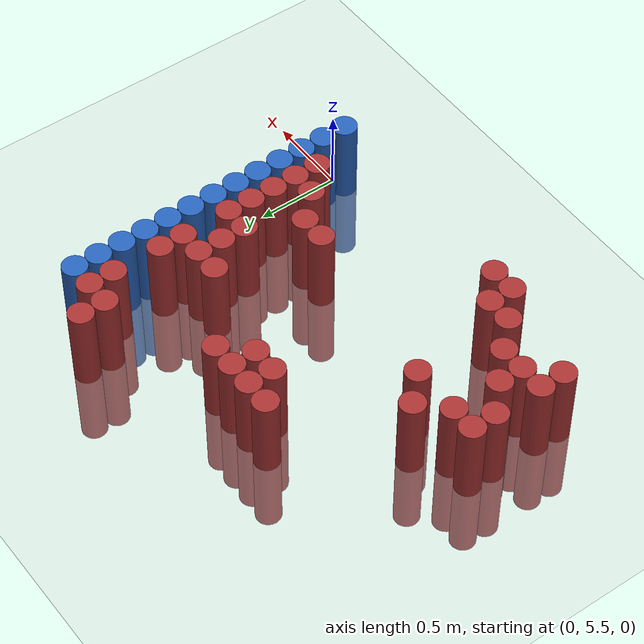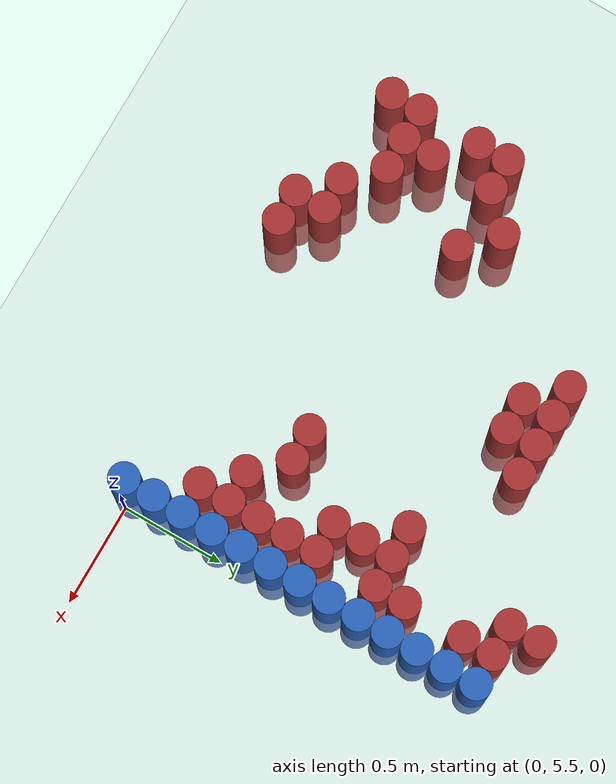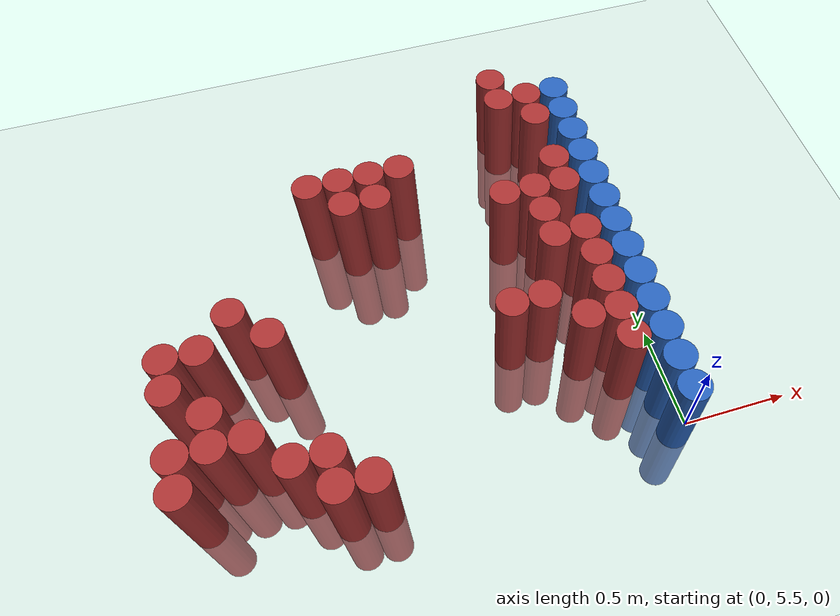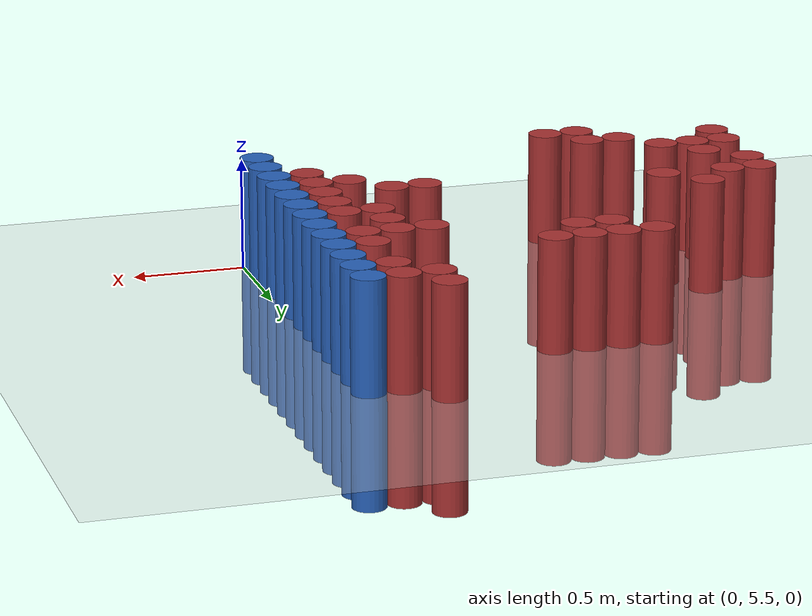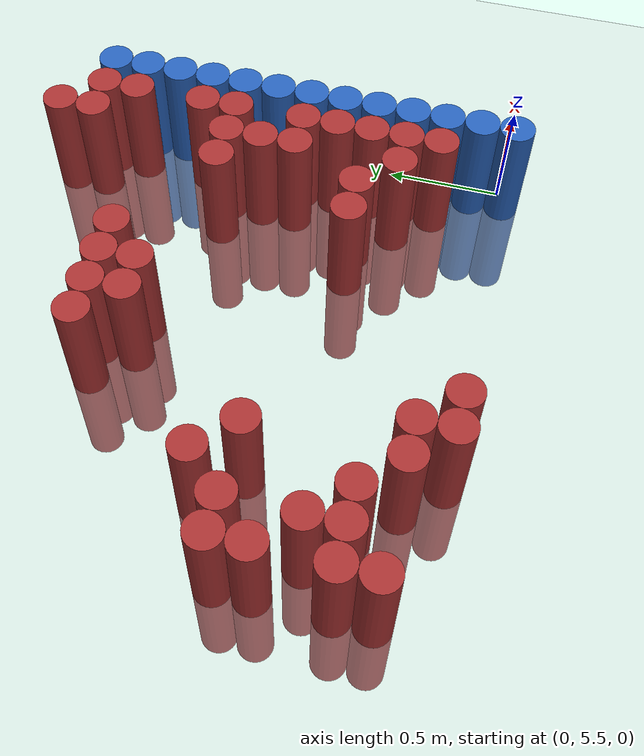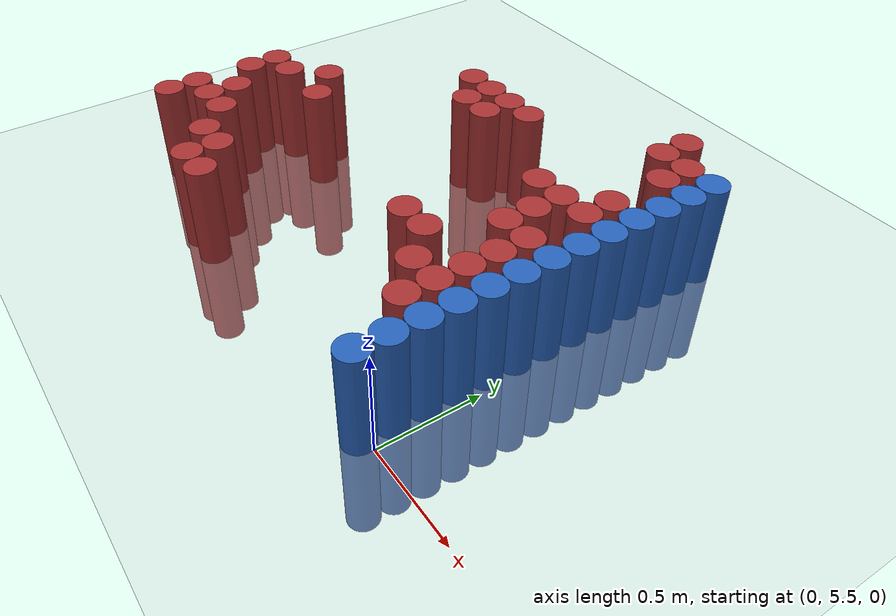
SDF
<sdf version="1.6">
 <world name="default">
  <model name="ground_plane">
   <static>1</static>
   <link name="link">
    <collision name="collision">
     <geometry><plane><normal>0 0 1</normal><size>100 100</size></plane></geometry>
     <surface><friction><ode><mu>100</mu><mu2>50</mu2></ode></friction></surface>
    </collision>
    <visual name="visual">
     <cast_shadows>0</cast_shadows>
     <geometry><plane><normal>0 0 1</normal><size>100 100</size></plane></geometry>
     <material>
      <script><uri>file://media/materials/scripts/gazebo.material</uri><name>Gazebo/Grey</name></script>
     </material>
    </visual>
   </link>
  </model>
  <model name="unit_cylinder_151">
   <static>1</static>
   <pose>-2.175000 5.625000 0.000000 0.000000 0.000000 0.000000</pose>
   <link name="link">
    <inertial>
     <mass>1</mass>
     <inertia><ixx>0.145833</ixx><ixy>0</ixy><ixz>0</ixz><iyy>0.145833</iyy><iyz>0</iyz><izz>0.125</izz></inertia>
    </inertial>
    <collision name="collision">
     <geometry><cylinder><radius>0.075000</radius><length>1</length></cylinder></geometry>
    </collision>
    <visual name="visual">
     <geometry><cylinder><radius>0.075000</radius><length>1</length></cylinder></geometry>
     <material>
      <ambient>0.648000 0.192000 0.192000 1</ambient>
      <diffuse>0.648000 0.192000 0.192000 1</diffuse>
     </material>
     <material>
      <script><name>Gazebo/Grey</name><uri>file://media/materials/scripts/gazebo.material</uri></script>
     </material>
    </visual>
   </link>
  </model>
  <model name="unit_cylinder_152">
   <static>1</static>
   <pose>-2.175000 5.775000 0.000000 0.000000 0.000000 0.000000</pose>
   <link name="link">
    <inertial>
     <mass>1</mass>
     <inertia><ixx>0.145833</ixx><ixy>0</ixy><ixz>0</ixz><iyy>0.145833</iyy><iyz>0</iyz><izz>0.125</izz></inertia>
    </inertial>
    <collision name="collision">
     <geometry><cylinder><radius>0.075000</radius><length>1</length></cylinder></geometry>
    </collision>
    <visual name="visual">
     <geometry><cylinder><radius>0.075000</radius><length>1</length></cylinder></geometry>
     <material>
      <ambient>0.648000 0.192000 0.192000 1</ambient>
      <diffuse>0.648000 0.192000 0.192000 1</diffuse>
     </material>
     <material>
      <script><name>Gazebo/Grey</name><uri>file://media/materials/scripts/gazebo.material</uri></script>
     </material>
    </visual>
   </link>
  </model>
  <model name="unit_cylinder_153">
   <static>1</static>
   <pose>-2.175000 6.075000 0.000000 0.000000 0.000000 0.000000</pose>
   <link name="link">
    <inertial>
     <mass>1</mass>
     <inertia><ixx>0.145833</ixx><ixy>0</ixy><ixz>0</ixz><iyy>0.145833</iyy><iyz>0</iyz><izz>0.125</izz></inertia>
    </inertial>
    <collision name="collision">
     <geometry><cylinder><radius>0.075000</radius><length>1</length></cylinder></geometry>
    </collision>
    <visual name="visual">
     <geometry><cylinder><radius>0.075000</radius><length>1</length></cylinder></geometry>
     <material>
      <ambient>0.648000 0.192000 0.192000 1</ambient>
      <diffuse>0.648000 0.192000 0.192000 1</diffuse>
     </material>
     <material>
      <script><name>Gazebo/Grey</name><uri>file://media/materials/scripts/gazebo.material</uri></script>
     </material>
    </visual>
   </link>
  </model>
  <model name="unit_cylinder_154">
   <static>1</static>
   <pose>-2.175000 6.225000 0.000000 0.000000 0.000000 0.000000</pose>
   <link name="link">
    <inertial>
     <mass>1</mass>
     <inertia><ixx>0.145833</ixx><ixy>0</ixy><ixz>0</ixz><iyy>0.145833</iyy><iyz>0</iyz><izz>0.125</izz></inertia>
    </inertial>
    <collision name="collision">
     <geometry><cylinder><radius>0.075000</radius><length>1</length></cylinder></geometry>
    </collision>
    <visual name="visual">
     <geometry><cylinder><radius>0.075000</radius><length>1</length></cylinder></geometry>
     <material>
      <ambient>0.648000 0.192000 0.192000 1</ambient>
      <diffuse>0.648000 0.192000 0.192000 1</diffuse>
     </material>
     <material>
      <script><name>Gazebo/Grey</name><uri>file://media/materials/scripts/gazebo.material</uri></script>
     </material>
    </visual>
   </link>
  </model>
  <model name="unit_cylinder_158">
   <static>1</static>
   <pose>-2.025000 5.775000 0.000000 0.000000 0.000000 0.000000</pose>
   <link name="link">
    <inertial>
     <mass>1</mass>
     <inertia><ixx>0.145833</ixx><ixy>0</ixy><ixz>0</ixz><iyy>0.145833</iyy><iyz>0</iyz><izz>0.125</izz></inertia>
    </inertial>
    <collision name="collision">
     <geometry><cylinder><radius>0.075000</radius><length>1</length></cylinder></geometry>
    </collision>
    <visual name="visual">
     <geometry><cylinder><radius>0.075000</radius><length>1</length></cylinder></geometry>
     <material>
      <ambient>0.648000 0.192000 0.192000 1</ambient>
      <diffuse>0.648000 0.192000 0.192000 1</diffuse>
     </material>
     <material>
      <script><name>Gazebo/Grey</name><uri>file://media/materials/scripts/gazebo.material</uri></script>
     </material>
    </visual>
   </link>
  </model>
  <model name="unit_cylinder_159">
   <static>1</static>
   <pose>-2.025000 5.925000 0.000000 0.000000 0.000000 0.000000</pose>
   <link name="link">
    <inertial>
     <mass>1</mass>
     <inertia><ixx>0.145833</ixx><ixy>0</ixy><ixz>0</ixz><iyy>0.145833</iyy><iyz>0</iyz><izz>0.125</izz></inertia>
    </inertial>
    <collision name="collision">
     <geometry><cylinder><radius>0.075000</radius><length>1</length></cylinder></geometry>
    </collision>
    <visual name="visual">
     <geometry><cylinder><radius>0.075000</radius><length>1</length></cylinder></geometry>
     <material>
      <ambient>0.648000 0.192000 0.192000 1</ambient>
      <diffuse>0.648000 0.192000 0.192000 1</diffuse>
     </material>
     <material>
      <script><name>Gazebo/Grey</name><uri>file://media/materials/scripts/gazebo.material</uri></script>
     </material>
    </visual>
   </link>
  </model>
  <model name="unit_cylinder_160">
   <static>1</static>
   <pose>-2.025000 6.225000 0.000000 0.000000 0.000000 0.000000</pose>
   <link name="link">
    <inertial>
     <mass>1</mass>
     <inertia><ixx>0.145833</ixx><ixy>0</ixy><ixz>0</ixz><iyy>0.145833</iyy><iyz>0</iyz><izz>0.125</izz></inertia>
    </inertial>
    <collision name="collision">
     <geometry><cylinder><radius>0.075000</radius><length>1</length></cylinder></geometry>
    </collision>
    <visual name="visual">
     <geometry><cylinder><radius>0.075000</radius><length>1</length></cylinder></geometry>
     <material>
      <ambient>0.648000 0.192000 0.192000 1</ambient>
      <diffuse>0.648000 0.192000 0.192000 1</diffuse>
     </material>
     <material>
      <script><name>Gazebo/Grey</name><uri>file://media/materials/scripts/gazebo.material</uri></script>
     </material>
    </visual>
   </link>
  </model>
  <model name="unit_cylinder_164">
   <static>1</static>
   <pose>-1.875000 5.775000 0.000000 0.000000 0.000000 0.000000</pose>
   <link name="link">
    <inertial>
     <mass>1</mass>
     <inertia><ixx>0.145833</ixx><ixy>0</ixy><ixz>0</ixz><iyy>0.145833</iyy><iyz>0</iyz><izz>0.125</izz></inertia>
    </inertial>
    <collision name="collision">
     <geometry><cylinder><radius>0.075000</radius><length>1</length></cylinder></geometry>
    </collision>
    <visual name="visual">
     <geometry><cylinder><radius>0.075000</radius><length>1</length></cylinder></geometry>
     <material>
      <ambient>0.648000 0.192000 0.192000 1</ambient>
      <diffuse>0.648000 0.192000 0.192000 1</diffuse>
     </material>
     <material>
      <script><name>Gazebo/Grey</name><uri>file://media/materials/scripts/gazebo.material</uri></script>
     </material>
    </visual>
   </link>
  </model>
  <model name="unit_cylinder_165">
   <static>1</static>
   <pose>-1.875000 6.375000 0.000000 0.000000 0.000000 0.000000</pose>
   <link name="link">
    <inertial>
     <mass>1</mass>
     <inertia><ixx>0.145833</ixx><ixy>0</ixy><ixz>0</ixz><iyy>0.145833</iyy><iyz>0</iyz><izz>0.125</izz></inertia>
    </inertial>
    <collision name="collision">
     <geometry><cylinder><radius>0.075000</radius><length>1</length></cylinder></geometry>
    </collision>
    <visual name="visual">
     <geometry><cylinder><radius>0.075000</radius><length>1</length></cylinder></geometry>
     <material>
      <ambient>0.648000 0.192000 0.192000 1</ambient>
      <diffuse>0.648000 0.192000 0.192000 1</diffuse>
     </material>
     <material>
      <script><name>Gazebo/Grey</name><uri>file://media/materials/scripts/gazebo.material</uri></script>
     </material>
    </visual>
   </link>
  </model>
  <model name="unit_cylinder_172">
   <static>1</static>
   <pose>-1.725000 5.625000 0.000000 0.000000 0.000000 0.000000</pose>
   <link name="link">
    <inertial>
     <mass>1</mass>
     <inertia><ixx>0.145833</ixx><ixy>0</ixy><ixz>0</ixz><iyy>0.145833</iyy><iyz>0</iyz><izz>0.125</izz></inertia>
    </inertial>
    <collision name="collision">
     <geometry><cylinder><radius>0.075000</radius><length>1</length></cylinder></geometry>
    </collision>
    <visual name="visual">
     <geometry><cylinder><radius>0.075000</radius><length>1</length></cylinder></geometry>
     <material>
      <ambient>0.648000 0.192000 0.192000 1</ambient>
      <diffuse>0.648000 0.192000 0.192000 1</diffuse>
     </material>
     <material>
      <script><name>Gazebo/Grey</name><uri>file://media/materials/scripts/gazebo.material</uri></script>
     </material>
    </visual>
   </link>
  </model>
  <model name="unit_cylinder_173">
   <static>1</static>
   <pose>-1.725000 6.225000 0.000000 0.000000 0.000000 0.000000</pose>
   <link name="link">
    <inertial>
     <mass>1</mass>
     <inertia><ixx>0.145833</ixx><ixy>0</ixy><ixz>0</ixz><iyy>0.145833</iyy><iyz>0</iyz><izz>0.125</izz></inertia>
    </inertial>
    <collision name="collision">
     <geometry><cylinder><radius>0.075000</radius><length>1</length></cylinder></geometry>
    </collision>
    <visual name="visual">
     <geometry><cylinder><radius>0.075000</radius><length>1</length></cylinder></geometry>
     <material>
      <ambient>0.648000 0.192000 0.192000 1</ambient>
      <diffuse>0.648000 0.192000 0.192000 1</diffuse>
     </material>
     <material>
      <script><name>Gazebo/Grey</name><uri>file://media/materials/scripts/gazebo.material</uri></script>
     </material>
    </visual>
   </link>
  </model>
  <model name="unit_cylinder_175">
   <static>1</static>
   <pose>-1.575000 5.475000 0.000000 0.000000 0.000000 0.000000</pose>
   <link name="link">
    <inertial>
     <mass>1</mass>
     <inertia><ixx>0.145833</ixx><ixy>0</ixy><ixz>0</ixz><iyy>0.145833</iyy><iyz>0</iyz><izz>0.125</izz></inertia>
    </inertial>
    <collision name="collision">
     <geometry><cylinder><radius>0.075000</radius><length>1</length></cylinder></geometry>
    </collision>
    <visual name="visual">
     <geometry><cylinder><radius>0.075000</radius><length>1</length></cylinder></geometry>
     <material>
      <ambient>0.648000 0.192000 0.192000 1</ambient>
      <diffuse>0.648000 0.192000 0.192000 1</diffuse>
     </material>
     <material>
      <script><name>Gazebo/Grey</name><uri>file://media/materials/scripts/gazebo.material</uri></script>
     </material>
    </visual>
   </link>
  </model>
  <model name="unit_cylinder_176">
   <static>1</static>
   <pose>-1.575000 5.625000 0.000000 0.000000 0.000000 0.000000</pose>
   <link name="link">
    <inertial>
     <mass>1</mass>
     <inertia><ixx>0.145833</ixx><ixy>0</ixy><ixz>0</ixz><iyy>0.145833</iyy><iyz>0</iyz><izz>0.125</izz></inertia>
    </inertial>
    <collision name="collision">
     <geometry><cylinder><radius>0.075000</radius><length>1</length></cylinder></geometry>
    </collision>
    <visual name="visual">
     <geometry><cylinder><radius>0.075000</radius><length>1</length></cylinder></geometry>
     <material>
      <ambient>0.648000 0.192000 0.192000 1</ambient>
      <diffuse>0.648000 0.192000 0.192000 1</diffuse>
     </material>
     <material>
      <script><name>Gazebo/Grey</name><uri>file://media/materials/scripts/gazebo.material</uri></script>
     </material>
    </visual>
   </link>
  </model>
  <model name="unit_cylinder_178">
   <static>1</static>
   <pose>-1.425000 5.475000 0.000000 0.000000 0.000000 0.000000</pose>
   <link name="link">
    <inertial>
     <mass>1</mass>
     <inertia><ixx>0.145833</ixx><ixy>0</ixy><ixz>0</ixz><iyy>0.145833</iyy><iyz>0</iyz><izz>0.125</izz></inertia>
    </inertial>
    <collision name="collision">
     <geometry><cylinder><radius>0.075000</radius><length>1</length></cylinder></geometry>
    </collision>
    <visual name="visual">
     <geometry><cylinder><radius>0.075000</radius><length>1</length></cylinder></geometry>
     <material>
      <ambient>0.648000 0.192000 0.192000 1</ambient>
      <diffuse>0.648000 0.192000 0.192000 1</diffuse>
     </material>
     <material>
      <script><name>Gazebo/Grey</name><uri>file://media/materials/scripts/gazebo.material</uri></script>
     </material>
    </visual>
   </link>
  </model>
  <model name="unit_cylinder_179">
   <static>1</static>
   <pose>-1.425000 6.975000 0.000000 0.000000 0.000000 0.000000</pose>
   <link name="link">
    <inertial>
     <mass>1</mass>
     <inertia><ixx>0.145833</ixx><ixy>0</ixy><ixz>0</ixz><iyy>0.145833</iyy><iyz>0</iyz><izz>0.125</izz></inertia>
    </inertial>
    <collision name="collision">
     <geometry><cylinder><radius>0.075000</radius><length>1</length></cylinder></geometry>
    </collision>
    <visual name="visual">
     <geometry><cylinder><radius>0.075000</radius><length>1</length></cylinder></geometry>
     <material>
      <ambient>0.648000 0.192000 0.192000 1</ambient>
      <diffuse>0.648000 0.192000 0.192000 1</diffuse>
     </material>
     <material>
      <script><name>Gazebo/Grey</name><uri>file://media/materials/scripts/gazebo.material</uri></script>
     </material>
    </visual>
   </link>
  </model>
  <model name="unit_cylinder_182">
   <static>1</static>
   <pose>-1.275000 6.825000 0.000000 0.000000 0.000000 0.000000</pose>
   <link name="link">
    <inertial>
     <mass>1</mass>
     <inertia><ixx>0.145833</ixx><ixy>0</ixy><ixz>0</ixz><iyy>0.145833</iyy><iyz>0</iyz><izz>0.125</izz></inertia>
    </inertial>
    <collision name="collision">
     <geometry><cylinder><radius>0.075000</radius><length>1</length></cylinder></geometry>
    </collision>
    <visual name="visual">
     <geometry><cylinder><radius>0.075000</radius><length>1</length></cylinder></geometry>
     <material>
      <ambient>0.648000 0.192000 0.192000 1</ambient>
      <diffuse>0.648000 0.192000 0.192000 1</diffuse>
     </material>
     <material>
      <script><name>Gazebo/Grey</name><uri>file://media/materials/scripts/gazebo.material</uri></script>
     </material>
    </visual>
   </link>
  </model>
  <model name="unit_cylinder_183">
   <static>1</static>
   <pose>-1.275000 6.975000 0.000000 0.000000 0.000000 0.000000</pose>
   <link name="link">
    <inertial>
     <mass>1</mass>
     <inertia><ixx>0.145833</ixx><ixy>0</ixy><ixz>0</ixz><iyy>0.145833</iyy><iyz>0</iyz><izz>0.125</izz></inertia>
    </inertial>
    <collision name="collision">
     <geometry><cylinder><radius>0.075000</radius><length>1</length></cylinder></geometry>
    </collision>
    <visual name="visual">
     <geometry><cylinder><radius>0.075000</radius><length>1</length></cylinder></geometry>
     <material>
      <ambient>0.648000 0.192000 0.192000 1</ambient>
      <diffuse>0.648000 0.192000 0.192000 1</diffuse>
     </material>
     <material>
      <script><name>Gazebo/Grey</name><uri>file://media/materials/scripts/gazebo.material</uri></script>
     </material>
    </visual>
   </link>
  </model>
  <model name="unit_cylinder_184">
   <static>1</static>
   <pose>-1.125000 6.825000 0.000000 0.000000 0.000000 0.000000</pose>
   <link name="link">
    <inertial>
     <mass>1</mass>
     <inertia><ixx>0.145833</ixx><ixy>0</ixy><ixz>0</ixz><iyy>0.145833</iyy><iyz>0</iyz><izz>0.125</izz></inertia>
    </inertial>
    <collision name="collision">
     <geometry><cylinder><radius>0.075000</radius><length>1</length></cylinder></geometry>
    </collision>
    <visual name="visual">
     <geometry><cylinder><radius>0.075000</radius><length>1</length></cylinder></geometry>
     <material>
      <ambient>0.648000 0.192000 0.192000 1</ambient>
      <diffuse>0.648000 0.192000 0.192000 1</diffuse>
     </material>
     <material>
      <script><name>Gazebo/Grey</name><uri>file://media/materials/scripts/gazebo.material</uri></script>
     </material>
    </visual>
   </link>
  </model>
  <model name="unit_cylinder_185">
   <static>1</static>
   <pose>-1.125000 6.975000 0.000000 0.000000 0.000000 0.000000</pose>
   <link name="link">
    <inertial>
     <mass>1</mass>
     <inertia><ixx>0.145833</ixx><ixy>0</ixy><ixz>0</ixz><iyy>0.145833</iyy><iyz>0</iyz><izz>0.125</izz></inertia>
    </inertial>
    <collision name="collision">
     <geometry><cylinder><radius>0.075000</radius><length>1</length></cylinder></geometry>
    </collision>
    <visual name="visual">
     <geometry><cylinder><radius>0.075000</radius><length>1</length></cylinder></geometry>
     <material>
      <ambient>0.648000 0.192000 0.192000 1</ambient>
      <diffuse>0.648000 0.192000 0.192000 1</diffuse>
     </material>
     <material>
      <script><name>Gazebo/Grey</name><uri>file://media/materials/scripts/gazebo.material</uri></script>
     </material>
    </visual>
   </link>
  </model>
  <model name="unit_cylinder_188">
   <static>1</static>
   <pose>-0.975000 6.975000 0.000000 0.000000 0.000000 0.000000</pose>
   <link name="link">
    <inertial>
     <mass>1</mass>
     <inertia><ixx>0.145833</ixx><ixy>0</ixy><ixz>0</ixz><iyy>0.145833</iyy><iyz>0</iyz><izz>0.125</izz></inertia>
    </inertial>
    <collision name="collision">
     <geometry><cylinder><radius>0.075000</radius><length>1</length></cylinder></geometry>
    </collision>
    <visual name="visual">
     <geometry><cylinder><radius>0.075000</radius><length>1</length></cylinder></geometry>
     <material>
      <ambient>0.648000 0.192000 0.192000 1</ambient>
      <diffuse>0.648000 0.192000 0.192000 1</diffuse>
     </material>
     <material>
      <script><name>Gazebo/Grey</name><uri>file://media/materials/scripts/gazebo.material</uri></script>
     </material>
    </visual>
   </link>
  </model>
  <model name="unit_cylinder_194">
   <static>1</static>
   <pose>-0.675000 6.075000 0.000000 0.000000 0.000000 0.000000</pose>
   <link name="link">
    <inertial>
     <mass>1</mass>
     <inertia><ixx>0.145833</ixx><ixy>0</ixy><ixz>0</ixz><iyy>0.145833</iyy><iyz>0</iyz><izz>0.125</izz></inertia>
    </inertial>
    <collision name="collision">
     <geometry><cylinder><radius>0.075000</radius><length>1</length></cylinder></geometry>
    </collision>
    <visual name="visual">
     <geometry><cylinder><radius>0.075000</radius><length>1</length></cylinder></geometry>
     <material>
      <ambient>0.648000 0.192000 0.192000 1</ambient>
      <diffuse>0.648000 0.192000 0.192000 1</diffuse>
     </material>
     <material>
      <script><name>Gazebo/Grey</name><uri>file://media/materials/scripts/gazebo.material</uri></script>
     </material>
    </visual>
   </link>
  </model>
  <model name="unit_cylinder_197">
   <static>1</static>
   <pose>-0.525000 6.075000 0.000000 0.000000 0.000000 0.000000</pose>
   <link name="link">
    <inertial>
     <mass>1</mass>
     <inertia><ixx>0.145833</ixx><ixy>0</ixy><ixz>0</ixz><iyy>0.145833</iyy><iyz>0</iyz><izz>0.125</izz></inertia>
    </inertial>
    <collision name="collision">
     <geometry><cylinder><radius>0.075000</radius><length>1</length></cylinder></geometry>
    </collision>
    <visual name="visual">
     <geometry><cylinder><radius>0.075000</radius><length>1</length></cylinder></geometry>
     <material>
      <ambient>0.648000 0.192000 0.192000 1</ambient>
      <diffuse>0.648000 0.192000 0.192000 1</diffuse>
     </material>
     <material>
      <script><name>Gazebo/Grey</name><uri>file://media/materials/scripts/gazebo.material</uri></script>
     </material>
    </visual>
   </link>
  </model>
  <model name="unit_cylinder_198">
   <static>1</static>
   <pose>-0.525000 6.675000 0.000000 0.000000 0.000000 0.000000</pose>
   <link name="link">
    <inertial>
     <mass>1</mass>
     <inertia><ixx>0.145833</ixx><ixy>0</ixy><ixz>0</ixz><iyy>0.145833</iyy><iyz>0</iyz><izz>0.125</izz></inertia>
    </inertial>
    <collision name="collision">
     <geometry><cylinder><radius>0.075000</radius><length>1</length></cylinder></geometry>
    </collision>
    <visual name="visual">
     <geometry><cylinder><radius>0.075000</radius><length>1</length></cylinder></geometry>
     <material>
      <ambient>0.648000 0.192000 0.192000 1</ambient>
      <diffuse>0.648000 0.192000 0.192000 1</diffuse>
     </material>
     <material>
      <script><name>Gazebo/Grey</name><uri>file://media/materials/scripts/gazebo.material</uri></script>
     </material>
    </visual>
   </link>
  </model>
  <model name="unit_cylinder_202">
   <static>1</static>
   <pose>-0.375000 5.925000 0.000000 0.000000 0.000000 0.000000</pose>
   <link name="link">
    <inertial>
     <mass>1</mass>
     <inertia><ixx>0.145833</ixx><ixy>0</ixy><ixz>0</ixz><iyy>0.145833</iyy><iyz>0</iyz><izz>0.125</izz></inertia>
    </inertial>
    <collision name="collision">
     <geometry><cylinder><radius>0.075000</radius><length>1</length></cylinder></geometry>
    </collision>
    <visual name="visual">
     <geometry><cylinder><radius>0.075000</radius><length>1</length></cylinder></geometry>
     <material>
      <ambient>0.648000 0.192000 0.192000 1</ambient>
      <diffuse>0.648000 0.192000 0.192000 1</diffuse>
     </material>
     <material>
      <script><name>Gazebo/Grey</name><uri>file://media/materials/scripts/gazebo.material</uri></script>
     </material>
    </visual>
   </link>
  </model>
  <model name="unit_cylinder_203">
   <static>1</static>
   <pose>-0.375000 6.375000 0.000000 0.000000 0.000000 0.000000</pose>
   <link name="link">
    <inertial>
     <mass>1</mass>
     <inertia><ixx>0.145833</ixx><ixy>0</ixy><ixz>0</ixz><iyy>0.145833</iyy><iyz>0</iyz><izz>0.125</izz></inertia>
    </inertial>
    <collision name="collision">
     <geometry><cylinder><radius>0.075000</radius><length>1</length></cylinder></geometry>
    </collision>
    <visual name="visual">
     <geometry><cylinder><radius>0.075000</radius><length>1</length></cylinder></geometry>
     <material>
      <ambient>0.648000 0.192000 0.192000 1</ambient>
      <diffuse>0.648000 0.192000 0.192000 1</diffuse>
     </material>
     <material>
      <script><name>Gazebo/Grey</name><uri>file://media/materials/scripts/gazebo.material</uri></script>
     </material>
    </visual>
   </link>
  </model>
  <model name="unit_cylinder_204">
   <static>1</static>
   <pose>-0.375000 6.525000 0.000000 0.000000 0.000000 0.000000</pose>
   <link name="link">
    <inertial>
     <mass>1</mass>
     <inertia><ixx>0.145833</ixx><ixy>0</ixy><ixz>0</ixz><iyy>0.145833</iyy><iyz>0</iyz><izz>0.125</izz></inertia>
    </inertial>
    <collision name="collision">
     <geometry><cylinder><radius>0.075000</radius><length>1</length></cylinder></geometry>
    </collision>
    <visual name="visual">
     <geometry><cylinder><radius>0.075000</radius><length>1</length></cylinder></geometry>
     <material>
      <ambient>0.648000 0.192000 0.192000 1</ambient>
      <diffuse>0.648000 0.192000 0.192000 1</diffuse>
     </material>
     <material>
      <script><name>Gazebo/Grey</name><uri>file://media/materials/scripts/gazebo.material</uri></script>
     </material>
    </visual>
   </link>
  </model>
  <model name="unit_cylinder_205">
   <static>1</static>
   <pose>-0.375000 6.675000 0.000000 0.000000 0.000000 0.000000</pose>
   <link name="link">
    <inertial>
     <mass>1</mass>
     <inertia><ixx>0.145833</ixx><ixy>0</ixy><ixz>0</ixz><iyy>0.145833</iyy><iyz>0</iyz><izz>0.125</izz></inertia>
    </inertial>
    <collision name="collision">
     <geometry><cylinder><radius>0.075000</radius><length>1</length></cylinder></geometry>
    </collision>
    <visual name="visual">
     <geometry><cylinder><radius>0.075000</radius><length>1</length></cylinder></geometry>
     <material>
      <ambient>0.648000 0.192000 0.192000 1</ambient>
      <diffuse>0.648000 0.192000 0.192000 1</diffuse>
     </material>
     <material>
      <script><name>Gazebo/Grey</name><uri>file://media/materials/scripts/gazebo.material</uri></script>
     </material>
    </visual>
   </link>
  </model>
  <model name="unit_cylinder_206">
   <static>1</static>
   <pose>-0.375000 7.275000 0.000000 0.000000 0.000000 0.000000</pose>
   <link name="link">
    <inertial>
     <mass>1</mass>
     <inertia><ixx>0.145833</ixx><ixy>0</ixy><ixz>0</ixz><iyy>0.145833</iyy><iyz>0</iyz><izz>0.125</izz></inertia>
    </inertial>
    <collision name="collision">
     <geometry><cylinder><radius>0.075000</radius><length>1</length></cylinder></geometry>
    </collision>
    <visual name="visual">
     <geometry><cylinder><radius>0.075000</radius><length>1</length></cylinder></geometry>
     <material>
      <ambient>0.648000 0.192000 0.192000 1</ambient>
      <diffuse>0.648000 0.192000 0.192000 1</diffuse>
     </material>
     <material>
      <script><name>Gazebo/Grey</name><uri>file://media/materials/scripts/gazebo.material</uri></script>
     </material>
    </visual>
   </link>
  </model>
  <model name="unit_cylinder_207">
   <static>1</static>
   <pose>-0.375000 7.425000 0.000000 0.000000 0.000000 0.000000</pose>
   <link name="link">
    <inertial>
     <mass>1</mass>
     <inertia><ixx>0.145833</ixx><ixy>0</ixy><ixz>0</ixz><iyy>0.145833</iyy><iyz>0</iyz><izz>0.125</izz></inertia>
    </inertial>
    <collision name="collision">
     <geometry><cylinder><radius>0.075000</radius><length>1</length></cylinder></geometry>
    </collision>
    <visual name="visual">
     <geometry><cylinder><radius>0.075000</radius><length>1</length></cylinder></geometry>
     <material>
      <ambient>0.648000 0.192000 0.192000 1</ambient>
      <diffuse>0.648000 0.192000 0.192000 1</diffuse>
     </material>
     <material>
      <script><name>Gazebo/Grey</name><uri>file://media/materials/scripts/gazebo.material</uri></script>
     </material>
    </visual>
   </link>
  </model>
  <model name="unit_cylinder_213">
   <static>1</static>
   <pose>-0.225000 5.775000 0.000000 0.000000 0.000000 0.000000</pose>
   <link name="link">
    <inertial>
     <mass>1</mass>
     <inertia><ixx>0.145833</ixx><ixy>0</ixy><ixz>0</ixz><iyy>0.145833</iyy><iyz>0</iyz><izz>0.125</izz></inertia>
    </inertial>
    <collision name="collision">
     <geometry><cylinder><radius>0.075000</radius><length>1</length></cylinder></geometry>
    </collision>
    <visual name="visual">
     <geometry><cylinder><radius>0.075000</radius><length>1</length></cylinder></geometry>
     <material>
      <ambient>0.648000 0.192000 0.192000 1</ambient>
      <diffuse>0.648000 0.192000 0.192000 1</diffuse>
     </material>
     <material>
      <script><name>Gazebo/Grey</name><uri>file://media/materials/scripts/gazebo.material</uri></script>
     </material>
    </visual>
   </link>
  </model>
  <model name="unit_cylinder_214">
   <static>1</static>
   <pose>-0.225000 5.925000 0.000000 0.000000 0.000000 0.000000</pose>
   <link name="link">
    <inertial>
     <mass>1</mass>
     <inertia><ixx>0.145833</ixx><ixy>0</ixy><ixz>0</ixz><iyy>0.145833</iyy><iyz>0</iyz><izz>0.125</izz></inertia>
    </inertial>
    <collision name="collision">
     <geometry><cylinder><radius>0.075000</radius><length>1</length></cylinder></geometry>
    </collision>
    <visual name="visual">
     <geometry><cylinder><radius>0.075000</radius><length>1</length></cylinder></geometry>
     <material>
      <ambient>0.648000 0.192000 0.192000 1</ambient>
      <diffuse>0.648000 0.192000 0.192000 1</diffuse>
     </material>
     <material>
      <script><name>Gazebo/Grey</name><uri>file://media/materials/scripts/gazebo.material</uri></script>
     </material>
    </visual>
   </link>
  </model>
  <model name="unit_cylinder_215">
   <static>1</static>
   <pose>-0.225000 6.075000 0.000000 0.000000 0.000000 0.000000</pose>
   <link name="link">
    <inertial>
     <mass>1</mass>
     <inertia><ixx>0.145833</ixx><ixy>0</ixy><ixz>0</ixz><iyy>0.145833</iyy><iyz>0</iyz><izz>0.125</izz></inertia>
    </inertial>
    <collision name="collision">
     <geometry><cylinder><radius>0.075000</radius><length>1</length></cylinder></geometry>
    </collision>
    <visual name="visual">
     <geometry><cylinder><radius>0.075000</radius><length>1</length></cylinder></geometry>
     <material>
      <ambient>0.648000 0.192000 0.192000 1</ambient>
      <diffuse>0.648000 0.192000 0.192000 1</diffuse>
     </material>
     <material>
      <script><name>Gazebo/Grey</name><uri>file://media/materials/scripts/gazebo.material</uri></script>
     </material>
    </visual>
   </link>
  </model>
  <model name="unit_cylinder_216">
   <static>1</static>
   <pose>-0.225000 6.225000 0.000000 0.000000 0.000000 0.000000</pose>
   <link name="link">
    <inertial>
     <mass>1</mass>
     <inertia><ixx>0.145833</ixx><ixy>0</ixy><ixz>0</ixz><iyy>0.145833</iyy><iyz>0</iyz><izz>0.125</izz></inertia>
    </inertial>
    <collision name="collision">
     <geometry><cylinder><radius>0.075000</radius><length>1</length></cylinder></geometry>
    </collision>
    <visual name="visual">
     <geometry><cylinder><radius>0.075000</radius><length>1</length></cylinder></geometry>
     <material>
      <ambient>0.648000 0.192000 0.192000 1</ambient>
      <diffuse>0.648000 0.192000 0.192000 1</diffuse>
     </material>
     <material>
      <script><name>Gazebo/Grey</name><uri>file://media/materials/scripts/gazebo.material</uri></script>
     </material>
    </visual>
   </link>
  </model>
  <model name="unit_cylinder_217">
   <static>1</static>
   <pose>-0.225000 6.375000 0.000000 0.000000 0.000000 0.000000</pose>
   <link name="link">
    <inertial>
     <mass>1</mass>
     <inertia><ixx>0.145833</ixx><ixy>0</ixy><ixz>0</ixz><iyy>0.145833</iyy><iyz>0</iyz><izz>0.125</izz></inertia>
    </inertial>
    <collision name="collision">
     <geometry><cylinder><radius>0.075000</radius><length>1</length></cylinder></geometry>
    </collision>
    <visual name="visual">
     <geometry><cylinder><radius>0.075000</radius><length>1</length></cylinder></geometry>
     <material>
      <ambient>0.648000 0.192000 0.192000 1</ambient>
      <diffuse>0.648000 0.192000 0.192000 1</diffuse>
     </material>
     <material>
      <script><name>Gazebo/Grey</name><uri>file://media/materials/scripts/gazebo.material</uri></script>
     </material>
    </visual>
   </link>
  </model>
  <model name="unit_cylinder_218">
   <static>1</static>
   <pose>-0.225000 6.675000 0.000000 0.000000 0.000000 0.000000</pose>
   <link name="link">
    <inertial>
     <mass>1</mass>
     <inertia><ixx>0.145833</ixx><ixy>0</ixy><ixz>0</ixz><iyy>0.145833</iyy><iyz>0</iyz><izz>0.125</izz></inertia>
    </inertial>
    <collision name="collision">
     <geometry><cylinder><radius>0.075000</radius><length>1</length></cylinder></geometry>
    </collision>
    <visual name="visual">
     <geometry><cylinder><radius>0.075000</radius><length>1</length></cylinder></geometry>
     <material>
      <ambient>0.648000 0.192000 0.192000 1</ambient>
      <diffuse>0.648000 0.192000 0.192000 1</diffuse>
     </material>
     <material>
      <script><name>Gazebo/Grey</name><uri>file://media/materials/scripts/gazebo.material</uri></script>
     </material>
    </visual>
   </link>
  </model>
  <model name="unit_cylinder_219">
   <static>1</static>
   <pose>-0.225000 6.825000 0.000000 0.000000 0.000000 0.000000</pose>
   <link name="link">
    <inertial>
     <mass>1</mass>
     <inertia><ixx>0.145833</ixx><ixy>0</ixy><ixz>0</ixz><iyy>0.145833</iyy><iyz>0</iyz><izz>0.125</izz></inertia>
    </inertial>
    <collision name="collision">
     <geometry><cylinder><radius>0.075000</radius><length>1</length></cylinder></geometry>
    </collision>
    <visual name="visual">
     <geometry><cylinder><radius>0.075000</radius><length>1</length></cylinder></geometry>
     <material>
      <ambient>0.648000 0.192000 0.192000 1</ambient>
      <diffuse>0.648000 0.192000 0.192000 1</diffuse>
     </material>
     <material>
      <script><name>Gazebo/Grey</name><uri>file://media/materials/scripts/gazebo.material</uri></script>
     </material>
    </visual>
   </link>
  </model>
  <model name="unit_cylinder_220">
   <static>1</static>
   <pose>-0.225000 7.125000 0.000000 0.000000 0.000000 0.000000</pose>
   <link name="link">
    <inertial>
     <mass>1</mass>
     <inertia><ixx>0.145833</ixx><ixy>0</ixy><ixz>0</ixz><iyy>0.145833</iyy><iyz>0</iyz><izz>0.125</izz></inertia>
    </inertial>
    <collision name="collision">
     <geometry><cylinder><radius>0.075000</radius><length>1</length></cylinder></geometry>
    </collision>
    <visual name="visual">
     <geometry><cylinder><radius>0.075000</radius><length>1</length></cylinder></geometry>
     <material>
      <ambient>0.648000 0.192000 0.192000 1</ambient>
      <diffuse>0.648000 0.192000 0.192000 1</diffuse>
     </material>
     <material>
      <script><name>Gazebo/Grey</name><uri>file://media/materials/scripts/gazebo.material</uri></script>
     </material>
    </visual>
   </link>
  </model>
  <model name="unit_cylinder_221">
   <static>1</static>
   <pose>-0.225000 7.275000 0.000000 0.000000 0.000000 0.000000</pose>
   <link name="link">
    <inertial>
     <mass>1</mass>
     <inertia><ixx>0.145833</ixx><ixy>0</ixy><ixz>0</ixz><iyy>0.145833</iyy><iyz>0</iyz><izz>0.125</izz></inertia>
    </inertial>
    <collision name="collision">
     <geometry><cylinder><radius>0.075000</radius><length>1</length></cylinder></geometry>
    </collision>
    <visual name="visual">
     <geometry><cylinder><radius>0.075000</radius><length>1</length></cylinder></geometry>
     <material>
      <ambient>0.648000 0.192000 0.192000 1</ambient>
      <diffuse>0.648000 0.192000 0.192000 1</diffuse>
     </material>
     <material>
      <script><name>Gazebo/Grey</name><uri>file://media/materials/scripts/gazebo.material</uri></script>
     </material>
    </visual>
   </link>
  </model>
  <model name="unit_cylinder_230">
   <static>1</static>
   <pose>-0.075000 5.475000 0.000000 0.000000 0.000000 0.000000</pose>
   <link name="link">
    <inertial>
     <mass>1</mass>
     <inertia><ixx>0.145833</ixx><ixy>0</ixy><ixz>0</ixz><iyy>0.145833</iyy><iyz>0</iyz><izz>0.125</izz></inertia>
    </inertial>
    <collision name="collision">
     <geometry><cylinder><radius>0.075000</radius><length>1</length></cylinder></geometry>
    </collision>
    <visual name="visual">
     <geometry><cylinder><radius>0.075000</radius><length>1</length></cylinder></geometry>
     <material>
      <ambient>0.152000 0.379000 0.720000 1</ambient>
      <diffuse>0.152000 0.379000 0.720000 1</diffuse>
     </material>
     <material>
      <script><name>Gazebo/Grey</name><uri>file://media/materials/scripts/gazebo.material</uri></script>
     </material>
    </visual>
   </link>
  </model>
  <model name="unit_cylinder_231">
   <static>1</static>
   <pose>-0.075000 5.625000 0.000000 0.000000 0.000000 0.000000</pose>
   <link name="link">
    <inertial>
     <mass>1</mass>
     <inertia><ixx>0.145833</ixx><ixy>0</ixy><ixz>0</ixz><iyy>0.145833</iyy><iyz>0</iyz><izz>0.125</izz></inertia>
    </inertial>
    <collision name="collision">
     <geometry><cylinder><radius>0.075000</radius><length>1</length></cylinder></geometry>
    </collision>
    <visual name="visual">
     <geometry><cylinder><radius>0.075000</radius><length>1</length></cylinder></geometry>
     <material>
      <ambient>0.152000 0.379000 0.720000 1</ambient>
      <diffuse>0.152000 0.379000 0.720000 1</diffuse>
     </material>
     <material>
      <script><name>Gazebo/Grey</name><uri>file://media/materials/scripts/gazebo.material</uri></script>
     </material>
    </visual>
   </link>
  </model>
  <model name="unit_cylinder_232">
   <static>1</static>
   <pose>-0.075000 5.775000 0.000000 0.000000 0.000000 0.000000</pose>
   <link name="link">
    <inertial>
     <mass>1</mass>
     <inertia><ixx>0.145833</ixx><ixy>0</ixy><ixz>0</ixz><iyy>0.145833</iyy><iyz>0</iyz><izz>0.125</izz></inertia>
    </inertial>
    <collision name="collision">
     <geometry><cylinder><radius>0.075000</radius><length>1</length></cylinder></geometry>
    </collision>
    <visual name="visual">
     <geometry><cylinder><radius>0.075000</radius><length>1</length></cylinder></geometry>
     <material>
      <ambient>0.152000 0.379000 0.720000 1</ambient>
      <diffuse>0.152000 0.379000 0.720000 1</diffuse>
     </material>
     <material>
      <script><name>Gazebo/Grey</name><uri>file://media/materials/scripts/gazebo.material</uri></script>
     </material>
    </visual>
   </link>
  </model>
  <model name="unit_cylinder_233">
   <static>1</static>
   <pose>-0.075000 5.925000 0.000000 0.000000 0.000000 0.000000</pose>
   <link name="link">
    <inertial>
     <mass>1</mass>
     <inertia><ixx>0.145833</ixx><ixy>0</ixy><ixz>0</ixz><iyy>0.145833</iyy><iyz>0</iyz><izz>0.125</izz></inertia>
    </inertial>
    <collision name="collision">
     <geometry><cylinder><radius>0.075000</radius><length>1</length></cylinder></geometry>
    </collision>
    <visual name="visual">
     <geometry><cylinder><radius>0.075000</radius><length>1</length></cylinder></geometry>
     <material>
      <ambient>0.152000 0.379000 0.720000 1</ambient>
      <diffuse>0.152000 0.379000 0.720000 1</diffuse>
     </material>
     <material>
      <script><name>Gazebo/Grey</name><uri>file://media/materials/scripts/gazebo.material</uri></script>
     </material>
    </visual>
   </link>
  </model>
  <model name="unit_cylinder_234">
   <static>1</static>
   <pose>-0.075000 6.075000 0.000000 0.000000 0.000000 0.000000</pose>
   <link name="link">
    <inertial>
     <mass>1</mass>
     <inertia><ixx>0.145833</ixx><ixy>0</ixy><ixz>0</ixz><iyy>0.145833</iyy><iyz>0</iyz><izz>0.125</izz></inertia>
    </inertial>
    <collision name="collision">
     <geometry><cylinder><radius>0.075000</radius><length>1</length></cylinder></geometry>
    </collision>
    <visual name="visual">
     <geometry><cylinder><radius>0.075000</radius><length>1</length></cylinder></geometry>
     <material>
      <ambient>0.152000 0.379000 0.720000 1</ambient>
      <diffuse>0.152000 0.379000 0.720000 1</diffuse>
     </material>
     <material>
      <script><name>Gazebo/Grey</name><uri>file://media/materials/scripts/gazebo.material</uri></script>
     </material>
    </visual>
   </link>
  </model>
  <model name="unit_cylinder_235">
   <static>1</static>
   <pose>-0.075000 6.225000 0.000000 0.000000 0.000000 0.000000</pose>
   <link name="link">
    <inertial>
     <mass>1</mass>
     <inertia><ixx>0.145833</ixx><ixy>0</ixy><ixz>0</ixz><iyy>0.145833</iyy><iyz>0</iyz><izz>0.125</izz></inertia>
    </inertial>
    <collision name="collision">
     <geometry><cylinder><radius>0.075000</radius><length>1</length></cylinder></geometry>
    </collision>
    <visual name="visual">
     <geometry><cylinder><radius>0.075000</radius><length>1</length></cylinder></geometry>
     <material>
      <ambient>0.152000 0.379000 0.720000 1</ambient>
      <diffuse>0.152000 0.379000 0.720000 1</diffuse>
     </material>
     <material>
      <script><name>Gazebo/Grey</name><uri>file://media/materials/scripts/gazebo.material</uri></script>
     </material>
    </visual>
   </link>
  </model>
  <model name="unit_cylinder_236">
   <static>1</static>
   <pose>-0.075000 6.375000 0.000000 0.000000 0.000000 0.000000</pose>
   <link name="link">
    <inertial>
     <mass>1</mass>
     <inertia><ixx>0.145833</ixx><ixy>0</ixy><ixz>0</ixz><iyy>0.145833</iyy><iyz>0</iyz><izz>0.125</izz></inertia>
    </inertial>
    <collision name="collision">
     <geometry><cylinder><radius>0.075000</radius><length>1</length></cylinder></geometry>
    </collision>
    <visual name="visual">
     <geometry><cylinder><radius>0.075000</radius><length>1</length></cylinder></geometry>
     <material>
      <ambient>0.152000 0.379000 0.720000 1</ambient>
      <diffuse>0.152000 0.379000 0.720000 1</diffuse>
     </material>
     <material>
      <script><name>Gazebo/Grey</name><uri>file://media/materials/scripts/gazebo.material</uri></script>
     </material>
    </visual>
   </link>
  </model>
  <model name="unit_cylinder_237">
   <static>1</static>
   <pose>-0.075000 6.525000 0.000000 0.000000 0.000000 0.000000</pose>
   <link name="link">
    <inertial>
     <mass>1</mass>
     <inertia><ixx>0.145833</ixx><ixy>0</ixy><ixz>0</ixz><iyy>0.145833</iyy><iyz>0</iyz><izz>0.125</izz></inertia>
    </inertial>
    <collision name="collision">
     <geometry><cylinder><radius>0.075000</radius><length>1</length></cylinder></geometry>
    </collision>
    <visual name="visual">
     <geometry><cylinder><radius>0.075000</radius><length>1</length></cylinder></geometry>
     <material>
      <ambient>0.152000 0.379000 0.720000 1</ambient>
      <diffuse>0.152000 0.379000 0.720000 1</diffuse>
     </material>
     <material>
      <script><name>Gazebo/Grey</name><uri>file://media/materials/scripts/gazebo.material</uri></script>
     </material>
    </visual>
   </link>
  </model>
  <model name="unit_cylinder_238">
   <static>1</static>
   <pose>-0.075000 6.675000 0.000000 0.000000 0.000000 0.000000</pose>
   <link name="link">
    <inertial>
     <mass>1</mass>
     <inertia><ixx>0.145833</ixx><ixy>0</ixy><ixz>0</ixz><iyy>0.145833</iyy><iyz>0</iyz><izz>0.125</izz></inertia>
    </inertial>
    <collision name="collision">
     <geometry><cylinder><radius>0.075000</radius><length>1</length></cylinder></geometry>
    </collision>
    <visual name="visual">
     <geometry><cylinder><radius>0.075000</radius><length>1</length></cylinder></geometry>
     <material>
      <ambient>0.152000 0.379000 0.720000 1</ambient>
      <diffuse>0.152000 0.379000 0.720000 1</diffuse>
     </material>
     <material>
      <script><name>Gazebo/Grey</name><uri>file://media/materials/scripts/gazebo.material</uri></script>
     </material>
    </visual>
   </link>
  </model>
  <model name="unit_cylinder_239">
   <static>1</static>
   <pose>-0.075000 6.825000 0.000000 0.000000 0.000000 0.000000</pose>
   <link name="link">
    <inertial>
     <mass>1</mass>
     <inertia><ixx>0.145833</ixx><ixy>0</ixy><ixz>0</ixz><iyy>0.145833</iyy><iyz>0</iyz><izz>0.125</izz></inertia>
    </inertial>
    <collision name="collision">
     <geometry><cylinder><radius>0.075000</radius><length>1</length></cylinder></geometry>
    </collision>
    <visual name="visual">
     <geometry><cylinder><radius>0.075000</radius><length>1</length></cylinder></geometry>
     <material>
      <ambient>0.152000 0.379000 0.720000 1</ambient>
      <diffuse>0.152000 0.379000 0.720000 1</diffuse>
     </material>
     <material>
      <script><name>Gazebo/Grey</name><uri>file://media/materials/scripts/gazebo.material</uri></script>
     </material>
    </visual>
   </link>
  </model>
  <model name="unit_cylinder_240">
   <static>1</static>
   <pose>-0.075000 6.975000 0.000000 0.000000 0.000000 0.000000</pose>
   <link name="link">
    <inertial>
     <mass>1</mass>
     <inertia><ixx>0.145833</ixx><ixy>0</ixy><ixz>0</ixz><iyy>0.145833</iyy><iyz>0</iyz><izz>0.125</izz></inertia>
    </inertial>
    <collision name="collision">
     <geometry><cylinder><radius>0.075000</radius><length>1</length></cylinder></geometry>
    </collision>
    <visual name="visual">
     <geometry><cylinder><radius>0.075000</radius><length>1</length></cylinder></geometry>
     <material>
      <ambient>0.152000 0.379000 0.720000 1</ambient>
      <diffuse>0.152000 0.379000 0.720000 1</diffuse>
     </material>
     <material>
      <script><name>Gazebo/Grey</name><uri>file://media/materials/scripts/gazebo.material</uri></script>
     </material>
    </visual>
   </link>
  </model>
  <model name="unit_cylinder_241">
   <static>1</static>
   <pose>-0.075000 7.125000 0.000000 0.000000 0.000000 0.000000</pose>
   <link name="link">
    <inertial>
     <mass>1</mass>
     <inertia><ixx>0.145833</ixx><ixy>0</ixy><ixz>0</ixz><iyy>0.145833</iyy><iyz>0</iyz><izz>0.125</izz></inertia>
    </inertial>
    <collision name="collision">
     <geometry><cylinder><radius>0.075000</radius><length>1</length></cylinder></geometry>
    </collision>
    <visual name="visual">
     <geometry><cylinder><radius>0.075000</radius><length>1</length></cylinder></geometry>
     <material>
      <ambient>0.152000 0.379000 0.720000 1</ambient>
      <diffuse>0.152000 0.379000 0.720000 1</diffuse>
     </material>
     <material>
      <script><name>Gazebo/Grey</name><uri>file://media/materials/scripts/gazebo.material</uri></script>
     </material>
    </visual>
   </link>
  </model>
  <model name="unit_cylinder_242">
   <static>1</static>
   <pose>-0.075000 7.275000 0.000000 0.000000 0.000000 0.000000</pose>
   <link name="link">
    <inertial>
     <mass>1</mass>
     <inertia><ixx>0.145833</ixx><ixy>0</ixy><ixz>0</ixz><iyy>0.145833</iyy><iyz>0</iyz><izz>0.125</izz></inertia>
    </inertial>
    <collision name="collision">
     <geometry><cylinder><radius>0.075000</radius><length>1</length></cylinder></geometry>
    </collision>
    <visual name="visual">
     <geometry><cylinder><radius>0.075000</radius><length>1</length></cylinder></geometry>
     <material>
      <ambient>0.152000 0.379000 0.720000 1</ambient>
      <diffuse>0.152000 0.379000 0.720000 1</diffuse>
     </material>
     <material>
      <script><name>Gazebo/Grey</name><uri>file://media/materials/scripts/gazebo.material</uri></script>
     </material>
    </visual>
   </link>
  </model>
 </world>
</sdf>
